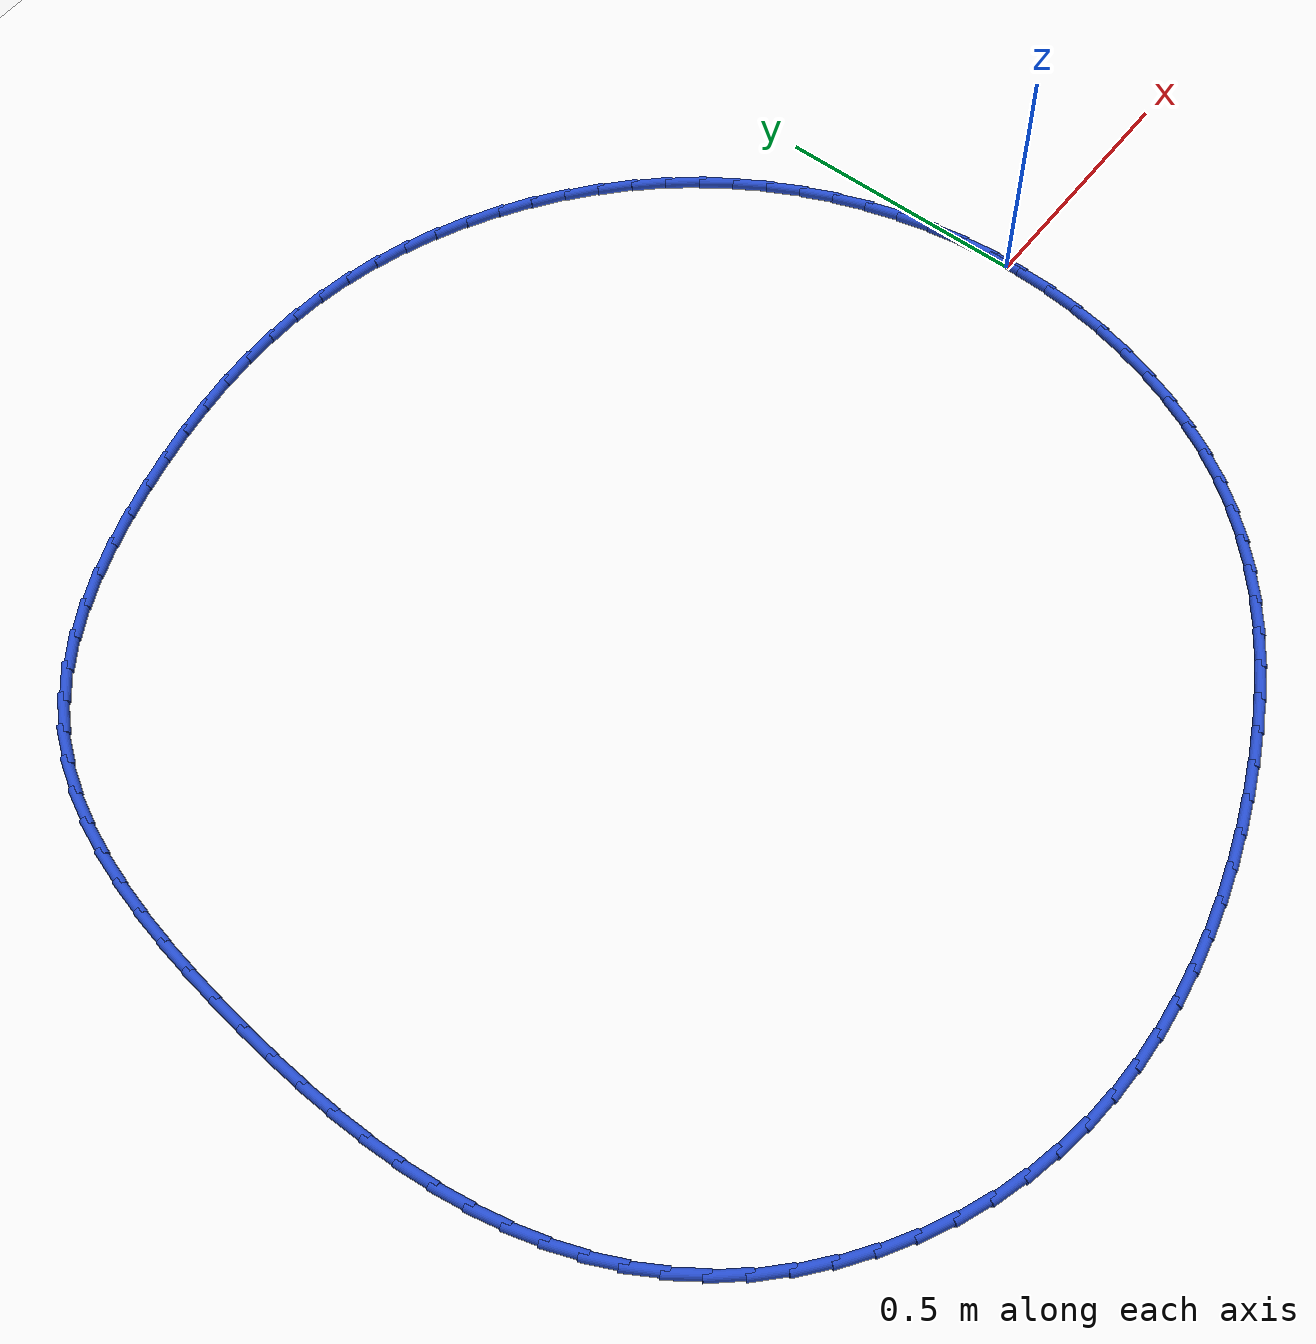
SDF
<sdf version="1.6">
 <world name="default">
  <light name="sun" type="directional">
   <pose>0 0 10 0 -0 0</pose>
   <diffuse>0.8 0.8 0.8 1</diffuse>
   <specular>0.2 0.2 0.2 1</specular>
   <attenuation>
    <range>1000</range>
    <constant>0.9</constant>
    <linear>0.01</linear>
    <quadratic>0.001</quadratic>
   </attenuation>
   <direction>-0.5 0.1 -0.9</direction>
  </light>
  <model name="ground_plane">
   <static>1</static>
   <link name="link">
    <collision name="collision">
     <geometry><plane><normal>0 0 1</normal><size>100 100</size></plane></geometry>
     <surface><friction><ode><mu>100</mu><mu2>50</mu2></ode></friction></surface>
    </collision>
    <visual name="visual">
     <cast_shadows>0</cast_shadows>
     <geometry><plane><normal>0 0 1</normal><size>100 100</size></plane></geometry>
     <material>
      <script><uri>file://media/materials/scripts/gazebo.material</uri><name>Gazebo/WhiteGlow</name></script>
     </material>
    </visual>
   </link>
  </model>
  <gravity>0 0 -9.8</gravity>
  <magnetic_field>6e-06 2.3e-05 -4.2e-05</magnetic_field>
  <atmosphere type="adiabatic"/>
  <physics name="default_physics" default="0" type="ode">
   <max_step_size>0.001</max_step_size>
   <real_time_factor>1</real_time_factor>
   <real_time_update_rate>1000</real_time_update_rate>
  </physics>
  <scene><ambient>0.4 0.4 0.4 1</ambient><background>0.7 0.7 0.7 1</background><shadows>1</shadows></scene>
  <spherical_coordinates>
   <surface_model>EARTH_WGS84</surface_model>
   <latitude_deg>0</latitude_deg>
   <longitude_deg>0</longitude_deg>
   <elevation>0</elevation>
   <heading_deg>0</heading_deg>
  </spherical_coordinates>
  <model name="line">
   <link name="link_0">
    <pose>2.7755575615628914e-17 -1.3877787807814457e-17 0.01 0 1.57 -1.5396666361829547</pose>
    <collision name="collision">
     <geometry><cylinder><radius>0.01</radius><length>0.08</length></cylinder></geometry>
    </collision>
    <visual name="visual">
     <material>
      <script><name>Gazebo/Blue</name><uri>file://media/materials/scripts/gazebo.material</uri></script>
     </material>
     <geometry><cylinder><radius>0.01</radius><length>0.08</length></cylinder></geometry>
    </visual>
   </link>
   <link name="link_1">
    <pose>-0.002068676911632316 0.0664320333873902 0.01 0 1.57 -1.4732998731462115</pose>
    <collision name="collision">
     <geometry><cylinder><radius>0.01</radius><length>0.08</length></cylinder></geometry>
    </collision>
    <visual name="visual">
     <material>
      <script><name>Gazebo/Blue</name><uri>file://media/materials/scripts/gazebo.material</uri></script>
     </material>
     <geometry><cylinder><radius>0.01</radius><length>0.08</length></cylinder></geometry>
    </visual>
   </link>
   <link name="link_2">
    <pose>-0.008526167065775412 0.13245511681312497 0.01 0 1.57 -1.4071627110914646</pose>
    <collision name="collision">
     <geometry><cylinder><radius>0.01</radius><length>0.08</length></cylinder></geometry>
    </collision>
    <visual name="visual">
     <material>
      <script><name>Gazebo/Blue</name><uri>file://media/materials/scripts/gazebo.material</uri></script>
     </material>
     <geometry><cylinder><radius>0.01</radius><length>0.08</length></cylinder></geometry>
    </visual>
   </link>
   <link name="link_3">
    <pose>-0.019316295532508392 0.19780630226422166 0.01 0 1.57 -1.3410327927561967</pose>
    <collision name="collision">
     <geometry><cylinder><radius>0.01</radius><length>0.08</length></cylinder></geometry>
    </collision>
    <visual name="visual">
     <material>
      <script><name>Gazebo/Blue</name><uri>file://media/materials/scripts/gazebo.material</uri></script>
     </material>
     <geometry><cylinder><radius>0.01</radius><length>0.08</length></cylinder></geometry>
    </visual>
   </link>
   <link name="link_4">
    <pose>-0.034382887381910476 0.262222641727698 0.01 0 1.57 -1.274683113809971</pose>
    <collision name="collision">
     <geometry><cylinder><radius>0.01</radius><length>0.08</length></cylinder></geometry>
    </collision>
    <visual name="visual">
     <material>
      <script><name>Gazebo/Blue</name><uri>file://media/materials/scripts/gazebo.material</uri></script>
     </material>
     <geometry><cylinder><radius>0.01</radius><length>0.08</length></cylinder></geometry>
    </visual>
   </link>
   <link name="link_5">
    <pose>-0.053669767684060773 0.32544118719057125 0.01 0 1.57 -1.207889470833252</pose>
    <collision name="collision">
     <geometry><cylinder><radius>0.01</radius><length>0.08</length></cylinder></geometry>
    </collision>
    <visual name="visual">
     <material>
      <script><name>Gazebo/Blue</name><uri>file://media/materials/scripts/gazebo.material</uri></script>
     </material>
     <geometry><cylinder><radius>0.01</radius><length>0.08</length></cylinder></geometry>
    </visual>
   </link>
   <link name="link_6">
    <pose>-0.07712076150903846 0.3871989906398591 0.01 0 1.57 -1.1404382048473993</pose>
    <collision name="collision">
     <geometry><cylinder><radius>0.01</radius><length>0.08</length></cylinder></geometry>
    </collision>
    <visual name="visual">
     <material>
      <script><name>Gazebo/Blue</name><uri>file://media/materials/scripts/gazebo.material</uri></script>
     </material>
     <geometry><cylinder><radius>0.01</radius><length>0.08</length></cylinder></geometry>
    </visual>
   </link>
   <link name="link_7">
    <pose>-0.10467969392692275 0.447233104062579 0.01 0 1.57 -1.0721344694362083</pose>
    <collision name="collision">
     <geometry><cylinder><radius>0.01</radius><length>0.08</length></cylinder></geometry>
    </collision>
    <visual name="visual">
     <material>
      <script><name>Gazebo/Blue</name><uri>file://media/materials/scripts/gazebo.material</uri></script>
     </material>
     <geometry><cylinder><radius>0.01</radius><length>0.08</length></cylinder></geometry>
    </visual>
   </link>
   <link name="link_8">
    <pose>-0.13629039000779275 0.5052805794457483 0.01 0 1.57 -1.0028111637615789</pose>
    <collision name="collision">
     <geometry><cylinder><radius>0.01</radius><length>0.08</length></cylinder></geometry>
    </collision>
    <visual name="visual">
     <material>
      <script><name>Gazebo/Blue</name><uri>file://media/materials/scripts/gazebo.material</uri></script>
     </material>
     <geometry><cylinder><radius>0.01</radius><length>0.08</length></cylinder></geometry>
    </visual>
   </link>
   <link name="link_9">
    <pose>-0.1718966748217276 0.5610784687763846 0.01 0 1.57 -0.9324235316983288</pose>
    <collision name="collision">
     <geometry><cylinder><radius>0.01</radius><length>0.08</length></cylinder></geometry>
    </collision>
    <visual name="visual">
     <material>
      <script><name>Gazebo/Blue</name><uri>file://media/materials/scripts/gazebo.material</uri></script>
     </material>
     <geometry><cylinder><radius>0.01</radius><length>0.08</length></cylinder></geometry>
    </visual>
   </link>
   <link name="link_10">
    <pose>-0.21143690778824817 0.6143659254807263 0.01 0 1.57 -0.862744038681525</pose>
    <collision name="collision">
     <geometry><cylinder><radius>0.01</radius><length>0.08</length></cylinder></geometry>
    </collision>
    <visual name="visual">
     <material>
      <script><name>Gazebo/Blue</name><uri>file://media/materials/scripts/gazebo.material</uri></script>
     </material>
     <geometry><cylinder><radius>0.01</radius><length>0.08</length></cylinder></geometry>
    </visual>
   </link>
   <link name="link_11">
    <pose>-0.25472664006701645 0.6649293204371971 0.01 0 1.57 -0.7953415461355577</pose>
    <collision name="collision">
     <geometry><cylinder><radius>0.01</radius><length>0.08</length></cylinder></geometry>
    </collision>
    <visual name="visual">
     <material>
      <script><name>Gazebo/Blue</name><uri>file://media/materials/scripts/gazebo.material</uri></script>
     </material>
     <geometry><cylinder><radius>0.01</radius><length>0.08</length></cylinder></geometry>
    </visual>
   </link>
   <link name="link_12">
    <pose>-0.301460205305848 0.7126016303638946 0.01 0 1.57 -0.729885296342831</pose>
    <collision name="collision">
     <geometry><cylinder><radius>0.01</radius><length>0.08</length></cylinder></geometry>
    </collision>
    <visual name="visual">
     <material>
      <script><name>Gazebo/Blue</name><uri>file://media/materials/scripts/gazebo.material</uri></script>
     </material>
     <geometry><cylinder><radius>0.01</radius><length>0.08</length></cylinder></geometry>
    </visual>
   </link>
   <link name="link_13">
    <pose>-0.3513267896685556 0.7572178110891175 0.01 0 1.57 -0.6659301898611303</pose>
    <collision name="collision">
     <geometry><cylinder><radius>0.01</radius><length>0.08</length></cylinder></geometry>
    </collision>
    <visual name="visual">
     <material>
      <script><name>Gazebo/Blue</name><uri>file://media/materials/scripts/gazebo.material</uri></script>
     </material>
     <geometry><cylinder><radius>0.01</radius><length>0.08</length></cylinder></geometry>
    </visual>
   </link>
   <link name="link_14">
    <pose>-0.4040155793189518 0.7986128184411636 0.01 0 1.57 -0.6030086593832586</pose>
    <collision name="collision">
     <geometry><cylinder><radius>0.01</radius><length>0.08</length></cylinder></geometry>
    </collision>
    <visual name="visual">
     <material>
      <script><name>Gazebo/Blue</name><uri>file://media/materials/scripts/gazebo.material</uri></script>
     </material>
     <geometry><cylinder><radius>0.01</radius><length>0.08</length></cylinder></geometry>
    </visual>
   </link>
   <link name="link_15">
    <pose>-0.45921576042084933 0.8366216082483318 0.01 0 1.57 -0.5406381720570681</pose>
    <collision name="collision">
     <geometry><cylinder><radius>0.01</radius><length>0.08</length></cylinder></geometry>
    </collision>
    <visual name="visual">
     <material>
      <script><name>Gazebo/Blue</name><uri>file://media/materials/scripts/gazebo.material</uri></script>
     </material>
     <geometry><cylinder><radius>0.01</radius><length>0.08</length></cylinder></geometry>
    </visual>
   </link>
   <link name="link_16">
    <pose>-0.516616519138061 0.8710791363389203 0.01 0 1.57 -0.4783256910679772</pose>
    <collision name="collision">
     <geometry><cylinder><radius>0.01</radius><length>0.08</length></cylinder></geometry>
    </collision>
    <visual name="visual">
     <material>
      <script><name>Gazebo/Blue</name><uri>file://media/materials/scripts/gazebo.material</uri></script>
     </material>
     <geometry><cylinder><radius>0.01</radius><length>0.08</length></cylinder></geometry>
    </visual>
   </link>
   <link name="link_17">
    <pose>-0.5759070416343992 0.9018203585412272 0.01 0 1.57 -0.4155703848669353</pose>
    <collision name="collision">
     <geometry><cylinder><radius>0.01</radius><length>0.08</length></cylinder></geometry>
    </collision>
    <visual name="visual">
     <material>
      <script><name>Gazebo/Blue</name><uri>file://media/materials/scripts/gazebo.material</uri></script>
     </material>
     <geometry><cylinder><radius>0.01</radius><length>0.08</length></cylinder></geometry>
    </visual>
   </link>
   <link name="link_18">
    <pose>-0.6367765140736767 0.9286802306835509 0.01 0 1.57 -0.35186588669432034</pose>
    <collision name="collision">
     <geometry><cylinder><radius>0.01</radius><length>0.08</length></cylinder></geometry>
    </collision>
    <visual name="visual">
     <material>
      <script><name>Gazebo/Blue</name><uri>file://media/materials/scripts/gazebo.material</uri></script>
     </material>
     <geometry><cylinder><radius>0.01</radius><length>0.08</length></cylinder></geometry>
    </visual>
   </link>
   <link name="link_19">
    <pose>-0.6989141226197068 0.9514937085941902 0.01 0 1.57 -0.2867034679441694</pose>
    <collision name="collision">
     <geometry><cylinder><radius>0.01</radius><length>0.08</length></cylinder></geometry>
    </collision>
    <visual name="visual">
     <material>
      <script><name>Gazebo/Blue</name><uri>file://media/materials/scripts/gazebo.material</uri></script>
     </material>
     <geometry><cylinder><radius>0.01</radius><length>0.08</length></cylinder></geometry>
    </visual>
   </link>
   <link name="link_20">
    <pose>-0.7620090534363011 0.9700957481014425 0.01 0 1.57 -0.21957839518341088</pose>
    <collision name="collision">
     <geometry><cylinder><radius>0.01</radius><length>0.08</length></cylinder></geometry>
    </collision>
    <visual name="visual">
     <material>
      <script><name>Gazebo/Blue</name><uri>file://media/materials/scripts/gazebo.material</uri></script>
     </material>
     <geometry><cylinder><radius>0.01</radius><length>0.08</length></cylinder></geometry>
    </visual>
   </link>
   <link name="link_21">
    <pose>-0.8257505317644688 0.98432136571862 0.01 0 1.57 -0.1512808712624088</pose>
    <collision name="collision">
     <geometry><cylinder><radius>0.01</radius><length>0.08</length></cylinder></geometry>
    </collision>
    <visual name="visual">
     <material>
      <script><name>Gazebo/Blue</name><uri>file://media/materials/scripts/gazebo.material</uri></script>
     </material>
     <geometry><cylinder><radius>0.01</radius><length>0.08</length></cylinder></geometry>
    </visual>
   </link>
   <link name="link_22">
    <pose>-0.8898878202840709 0.9940988132251783 0.01 0 1.57 -0.08571131233680594</pose>
    <collision name="collision">
     <geometry><cylinder><radius>0.01</radius><length>0.08</length></cylinder></geometry>
    </collision>
    <visual name="visual">
     <material>
      <script><name>Gazebo/Blue</name><uri>file://media/materials/scripts/gazebo.material</uri></script>
     </material>
     <geometry><cylinder><radius>0.01</radius><length>0.08</length></cylinder></geometry>
    </visual>
   </link>
   <link name="link_23">
    <pose>-0.9543513152349352 0.9996376341410964 0.01 0 1.57 -0.02412623185327196</pose>
    <collision name="collision">
     <geometry><cylinder><radius>0.01</radius><length>0.08</length></cylinder></geometry>
    </collision>
    <visual name="visual">
     <material>
      <script><name>Gazebo/Blue</name><uri>file://media/materials/scripts/gazebo.material</uri></script>
     </material>
     <geometry><cylinder><radius>0.01</radius><length>0.08</length></cylinder></geometry>
    </visual>
   </link>
   <link name="link_24">
    <pose>-1.0191054372854378 1.0012002102937785 0.01 0 1.57 0.03307997971531006</pose>
    <collision name="collision">
     <geometry><cylinder><radius>0.01</radius><length>0.08</length></cylinder></geometry>
    </collision>
    <visual name="visual">
     <material>
      <script><name>Gazebo/Blue</name><uri>file://media/materials/scripts/gazebo.material</uri></script>
     </material>
     <geometry><cylinder><radius>0.01</radius><length>0.08</length></cylinder></geometry>
    </visual>
   </link>
   <link name="link_25">
    <pose>-1.084114607103954 0.9990489235106266 0.01 0 1.57 0.08568398727525747</pose>
    <collision name="collision">
     <geometry><cylinder><radius>0.01</radius><length>0.08</length></cylinder></geometry>
    </collision>
    <visual name="visual">
     <material>
      <script><name>Gazebo/Blue</name><uri>file://media/materials/scripts/gazebo.material</uri></script>
     </material>
     <geometry><cylinder><radius>0.01</radius><length>0.08</length></cylinder></geometry>
    </visual>
   </link>
   <link name="link_26">
    <pose>-1.14934324535886 0.9934461556190449 0.01 0 1.57 0.13360577976679078</pose>
    <collision name="collision">
     <geometry><cylinder><radius>0.01</radius><length>0.08</length></cylinder></geometry>
    </collision>
    <visual name="visual">
     <material>
      <script><name>Gazebo/Blue</name><uri>file://media/materials/scripts/gazebo.material</uri></script>
     </material>
     <geometry><cylinder><radius>0.01</radius><length>0.08</length></cylinder></geometry>
    </visual>
   </link>
   <link name="link_27">
    <pose>-1.2147557727185307 0.9846542884464362 0.01 0 1.57 0.17687576969226165</pose>
    <collision name="collision">
     <geometry><cylinder><radius>0.01</radius><length>0.08</length></cylinder></geometry>
    </collision>
    <visual name="visual">
     <material>
      <script><name>Gazebo/Blue</name><uri>file://media/materials/scripts/gazebo.material</uri></script>
     </material>
     <geometry><cylinder><radius>0.01</radius><length>0.08</length></cylinder></geometry>
    </visual>
   </link>
   <link name="link_28">
    <pose>-1.2803166098513425 0.9729357038202046 0.01 0 1.57 0.21560221272392652</pose>
    <collision name="collision">
     <geometry><cylinder><radius>0.01</radius><length>0.08</length></cylinder></geometry>
    </collision>
    <visual name="visual">
     <material>
      <script><name>Gazebo/Blue</name><uri>file://media/materials/scripts/gazebo.material</uri></script>
     </material>
     <geometry><cylinder><radius>0.01</radius><length>0.08</length></cylinder></geometry>
    </visual>
   </link>
   <link name="link_29">
    <pose>-1.3459901774256702 0.9585527835677526 0.01 0 1.57 0.25154227002247675</pose>
    <collision name="collision">
     <geometry><cylinder><radius>0.01</radius><length>0.08</length></cylinder></geometry>
    </collision>
    <visual name="visual">
     <material>
      <script><name>Gazebo/Blue</name><uri>file://media/materials/scripts/gazebo.material</uri></script>
     </material>
     <geometry><cylinder><radius>0.01</radius><length>0.08</length></cylinder></geometry>
    </visual>
   </link>
   <link name="link_30">
    <pose>-1.4116397055581724 0.9416818136499769 0.01 0 1.57 0.2917548814380329</pose>
    <collision name="collision">
     <geometry><cylinder><radius>0.01</radius><length>0.08</length></cylinder></geometry>
    </collision>
    <visual name="visual">
     <material>
      <script><name>Gazebo/Blue</name><uri>file://media/materials/scripts/gazebo.material</uri></script>
     </material>
     <geometry><cylinder><radius>0.01</radius><length>0.08</length></cylinder></geometry>
    </visual>
   </link>
   <link name="link_31">
    <pose>-1.4767069671527253 0.9221404919648162 0.01 0 1.57 0.33878603515841765</pose>
    <collision name="collision">
     <geometry><cylinder><radius>0.01</radius><length>0.08</length></cylinder></geometry>
    </collision>
    <visual name="visual">
     <material>
      <script><name>Gazebo/Blue</name><uri>file://media/materials/scripts/gazebo.material</uri></script>
     </material>
     <geometry><cylinder><radius>0.01</radius><length>0.08</length></cylinder></geometry>
    </visual>
   </link>
   <link name="link_32">
    <pose>-1.540524026336454 0.8996531729899258 0.01 0 1.57 0.39365830364746035</pose>
    <collision name="collision">
     <geometry><cylinder><radius>0.01</radius><length>0.08</length></cylinder></geometry>
    </collision>
    <visual name="visual">
     <material>
      <script><name>Gazebo/Blue</name><uri>file://media/materials/scripts/gazebo.material</uri></script>
     </material>
     <geometry><cylinder><radius>0.01</radius><length>0.08</length></cylinder></geometry>
    </visual>
   </link>
   <link name="link_33">
    <pose>-1.602422946978823 0.8739442109837345 0.01 0 1.57 0.45755736041070355</pose>
    <collision name="collision">
     <geometry><cylinder><radius>0.01</radius><length>0.08</length></cylinder></geometry>
    </collision>
    <visual name="visual">
     <material>
      <script><name>Gazebo/Blue</name><uri>file://media/materials/scripts/gazebo.material</uri></script>
     </material>
     <geometry><cylinder><radius>0.01</radius><length>0.08</length></cylinder></geometry>
    </visual>
   </link>
   <link name="link_34">
    <pose>-1.6617357929492957 0.8447379602046715 0.01 0 1.57 0.5317691239062395</pose>
    <collision name="collision">
     <geometry><cylinder><radius>0.01</radius><length>0.08</length></cylinder></geometry>
    </collision>
    <visual name="visual">
     <material>
      <script><name>Gazebo/Blue</name><uri>file://media/materials/scripts/gazebo.material</uri></script>
     </material>
     <geometry><cylinder><radius>0.01</radius><length>0.08</length></cylinder></geometry>
    </visual>
   </link>
   <link name="link_35">
    <pose>-1.7177946281173362 0.8117587749111652 0.01 0 1.57 0.6175407299610177</pose>
    <collision name="collision">
     <geometry><cylinder><radius>0.01</radius><length>0.08</length></cylinder></geometry>
    </collision>
    <visual name="visual">
     <material>
      <script><name>Gazebo/Blue</name><uri>file://media/materials/scripts/gazebo.material</uri></script>
     </material>
     <geometry><cylinder><radius>0.01</radius><length>0.08</length></cylinder></geometry>
    </visual>
   </link>
   <link name="link_36">
    <pose>-1.769931516352407 0.7747310093616446 0.01 0 1.57 0.7158246583210682</pose>
    <collision name="collision">
     <geometry><cylinder><radius>0.01</radius><length>0.08</length></cylinder></geometry>
    </collision>
    <visual name="visual">
     <material>
      <script><name>Gazebo/Blue</name><uri>file://media/materials/scripts/gazebo.material</uri></script>
     </material>
     <geometry><cylinder><radius>0.01</radius><length>0.08</length></cylinder></geometry>
    </visual>
   </link>
   <link name="link_37">
    <pose>-1.8174785215239735 0.7333790178145384 0.01 0 1.57 0.8256910286679854</pose>
    <collision name="collision">
     <geometry><cylinder><radius>0.01</radius><length>0.08</length></cylinder></geometry>
    </collision>
    <visual name="visual">
     <material>
      <script><name>Gazebo/Blue</name><uri>file://media/materials/scripts/gazebo.material</uri></script>
     </material>
     <geometry><cylinder><radius>0.01</radius><length>0.08</length></cylinder></geometry>
    </visual>
   </link>
   <link name="link_38">
    <pose>-1.8598300825491287 0.6874692282610181 0.01 0 1.57 0.9339381533999899</pose>
    <collision name="collision">
     <geometry><cylinder><radius>0.01</radius><length>0.08</length></cylinder></geometry>
    </collision>
    <visual name="visual">
     <material>
      <script><name>Gazebo/Blue</name><uri>file://media/materials/scripts/gazebo.material</uri></script>
     </material>
     <geometry><cylinder><radius>0.01</radius><length>0.08</length></cylinder></geometry>
    </visual>
   </link>
   <link name="link_39">
    <pose>-1.897015530161807 0.6371963211688044 0.01 0 1.57 1.031676700301668</pose>
    <collision name="collision">
     <geometry><cylinder><radius>0.01</radius><length>0.08</length></cylinder></geometry>
    </collision>
    <visual name="visual">
     <material>
      <script><name>Gazebo/Blue</name><uri>file://media/materials/scripts/gazebo.material</uri></script>
     </material>
     <geometry><cylinder><radius>0.01</radius><length>0.08</length></cylinder></geometry>
    </visual>
   </link>
   <link name="link_40">
    <pose>-1.929434671859859 0.5830048740549139 0.01 0 1.57 1.1179427794209147</pose>
    <collision name="collision">
     <geometry><cylinder><radius>0.01</radius><length>0.08</length></cylinder></geometry>
    </collision>
    <visual name="visual">
     <material>
      <script><name>Gazebo/Blue</name><uri>file://media/materials/scripts/gazebo.material</uri></script>
     </material>
     <geometry><cylinder><radius>0.01</radius><length>0.08</length></cylinder></geometry>
    </visual>
   </link>
   <link name="link_41">
    <pose>-1.9574919479096 0.5253425893696447 0.01 0 1.57 1.1927686699849267</pose>
    <collision name="collision">
     <geometry><cylinder><radius>0.01</radius><length>0.08</length></cylinder></geometry>
    </collision>
    <visual name="visual">
     <material>
      <script><name>Gazebo/Blue</name><uri>file://media/materials/scripts/gazebo.material</uri></script>
     </material>
     <geometry><cylinder><radius>0.01</radius><length>0.08</length></cylinder></geometry>
    </visual>
   </link>
   <link name="link_42">
    <pose>-1.9815917985773472 0.46465716956329584 0.01 0 1.57 1.2567490397251746</pose>
    <collision name="collision">
     <geometry><cylinder><radius>0.01</radius><length>0.08</length></cylinder></geometry>
    </collision>
    <visual name="visual">
     <material>
      <script><name>Gazebo/Blue</name><uri>file://media/materials/scripts/gazebo.material</uri></script>
     </material>
     <geometry><cylinder><radius>0.01</radius><length>0.08</length></cylinder></geometry>
    </visual>
   </link>
   <link name="link_43">
    <pose>-2.0021386641294168 0.40139631708616497 0.01 0 1.57 1.3107456372950315</pose>
    <collision name="collision">
     <geometry><cylinder><radius>0.01</radius><length>0.08</length></cylinder></geometry>
    </collision>
    <visual name="visual">
     <material>
      <script><name>Gazebo/Blue</name><uri>file://media/materials/scripts/gazebo.material</uri></script>
     </material>
     <geometry><cylinder><radius>0.01</radius><length>0.08</length></cylinder></geometry>
    </visual>
   </link>
   <link name="link_44">
    <pose>-2.0195369848321247 0.336007734388551 0.01 0 1.57 1.3556811402090074</pose>
    <collision name="collision">
     <geometry><cylinder><radius>0.01</radius><length>0.08</length></cylinder></geometry>
    </collision>
    <visual name="visual">
     <material>
      <script><name>Gazebo/Blue</name><uri>file://media/materials/scripts/gazebo.material</uri></script>
     </material>
     <geometry><cylinder><radius>0.01</radius><length>0.08</length></cylinder></geometry>
    </visual>
   </link>
   <link name="link_45">
    <pose>-2.0341912009517875 0.2689391239207522 0.01 0 1.57 1.392414334858567</pose>
    <collision name="collision">
     <geometry><cylinder><radius>0.01</radius><length>0.08</length></cylinder></geometry>
    </collision>
    <visual name="visual">
     <material>
      <script><name>Gazebo/Blue</name><uri>file://media/materials/scripts/gazebo.material</uri></script>
     </material>
     <geometry><cylinder><radius>0.01</radius><length>0.08</length></cylinder></geometry>
    </visual>
   </link>
   <link name="link_46">
    <pose>-2.0465057527547206 0.20063818813306708 0.01 0 1.57 1.4216728941943646</pose>
    <collision name="collision">
     <geometry><cylinder><radius>0.01</radius><length>0.08</length></cylinder></geometry>
    </collision>
    <visual name="visual">
     <material>
      <script><name>Gazebo/Blue</name><uri>file://media/materials/scripts/gazebo.material</uri></script>
     </material>
     <geometry><cylinder><radius>0.01</radius><length>0.08</length></cylinder></geometry>
    </visual>
   </link>
   <link name="link_47">
    <pose>-2.056885080507242 0.13155262947579405 0.01 0 1.57 1.4446354104676953</pose>
    <collision name="collision">
     <geometry><cylinder><radius>0.01</radius><length>0.08</length></cylinder></geometry>
    </collision>
    <visual name="visual">
     <material>
      <script><name>Gazebo/Blue</name><uri>file://media/materials/scripts/gazebo.material</uri></script>
     </material>
     <geometry><cylinder><radius>0.01</radius><length>0.08</length></cylinder></geometry>
    </visual>
   </link>
   <link name="link_48">
    <pose>-2.065691838095973 0.06211762764616226 0.01 0 1.57 1.4680350586954916</pose>
    <collision name="collision">
     <geometry><cylinder><radius>0.01</radius><length>0.08</length></cylinder></geometry>
    </collision>
    <visual name="visual">
     <material>
      <script><name>Gazebo/Blue</name><uri>file://media/materials/scripts/gazebo.material</uri></script>
     </material>
     <geometry><cylinder><radius>0.01</radius><length>0.08</length></cylinder></geometry>
    </visual>
   </link>
   <link name="link_49">
    <pose>-2.0728567949897823 -0.007361066959678485 0.01 0 1.57 1.495908772334002</pose>
    <collision name="collision">
     <geometry><cylinder><radius>0.01</radius><length>0.08</length></cylinder></geometry>
    </collision>
    <visual name="visual">
     <material>
      <script><name>Gazebo/Blue</name><uri>file://media/materials/scripts/gazebo.material</uri></script>
     </material>
     <geometry><cylinder><radius>0.01</radius><length>0.08</length></cylinder></geometry>
    </visual>
   </link>
   <link name="link_50">
    <pose>-2.0780557052748563 -0.07665412824195683 0.01 0 1.57 1.5286414190965583</pose>
    <collision name="collision">
     <geometry><cylinder><radius>0.01</radius><length>0.08</length></cylinder></geometry>
    </collision>
    <visual name="visual">
     <material>
      <script><name>Gazebo/Blue</name><uri>file://media/materials/scripts/gazebo.material</uri></script>
     </material>
     <geometry><cylinder><radius>0.01</radius><length>0.08</length></cylinder></geometry>
    </visual>
   </link>
   <link name="link_51">
    <pose>-2.0809610182044618 -0.14553322050990408 0.01 0 1.57 1.5666319574731642</pose>
    <collision name="collision">
     <geometry><cylinder><radius>0.01</radius><length>0.08</length></cylinder></geometry>
    </collision>
    <visual name="visual">
     <material>
      <script><name>Gazebo/Blue</name><uri>file://media/materials/scripts/gazebo.material</uri></script>
     </material>
     <geometry><cylinder><radius>0.01</radius><length>0.08</length></cylinder></geometry>
    </visual>
   </link>
   <link name="link_52">
    <pose>-2.0812451830318635 -0.21377000807275182 0.01 0 1.57 -1.531263921655442</pose>
    <collision name="collision">
     <geometry><cylinder><radius>0.01</radius><length>0.08</length></cylinder></geometry>
    </collision>
    <visual name="visual">
     <material>
      <script><name>Gazebo/Blue</name><uri>file://media/materials/scripts/gazebo.material</uri></script>
     </material>
     <geometry><cylinder><radius>0.01</radius><length>0.08</length></cylinder></geometry>
    </visual>
   </link>
   <link name="link_53">
    <pose>-2.0785806490103256 -0.2811361552397311 0.01 0 1.57 -1.4813863732306323</pose>
    <collision name="collision">
     <geometry><cylinder><radius>0.01</radius><length>0.08</length></cylinder></geometry>
    </collision>
    <visual name="visual">
     <material>
      <script><name>Gazebo/Blue</name><uri>file://media/materials/scripts/gazebo.material</uri></script>
     </material>
     <geometry><cylinder><radius>0.01</radius><length>0.08</length></cylinder></geometry>
    </visual>
   </link>
   <link name="link_54">
    <pose>-2.072639865393116 -0.3474033263200738 0.01 0 1.57 -1.4248653935794735</pose>
    <collision name="collision">
     <geometry><cylinder><radius>0.01</radius><length>0.08</length></cylinder></geometry>
    </collision>
    <visual name="visual">
     <material>
      <script><name>Gazebo/Blue</name><uri>file://media/materials/scripts/gazebo.material</uri></script>
     </material>
     <geometry><cylinder><radius>0.01</radius><length>0.08</length></cylinder></geometry>
    </visual>
   </link>
   <link name="link_55">
    <pose>-2.0630952814334966 -0.4123431856230107 0.01 0 1.57 -1.361308439435145</pose>
    <collision name="collision">
     <geometry><cylinder><radius>0.01</radius><length>0.08</length></cylinder></geometry>
    </collision>
    <visual name="visual">
     <material>
      <script><name>Gazebo/Blue</name><uri>file://media/materials/scripts/gazebo.material</uri></script>
     </material>
     <geometry><cylinder><radius>0.01</radius><length>0.08</length></cylinder></geometry>
    </visual>
   </link>
   <link name="link_56">
    <pose>-2.049619346384736 -0.4757273974577737 0.01 0 1.57 -1.2904751172739095</pose>
    <collision name="collision">
     <geometry><cylinder><radius>0.01</radius><length>0.08</length></cylinder></geometry>
    </collision>
    <visual name="visual">
     <material>
      <script><name>Gazebo/Blue</name><uri>file://media/materials/scripts/gazebo.material</uri></script>
     </material>
     <geometry><cylinder><radius>0.01</radius><length>0.08</length></cylinder></geometry>
    </visual>
   </link>
   <link name="link_57">
    <pose>-2.031884509500097 -0.5373276261335937 0.01 0 1.57 -1.2123814141477622</pose>
    <collision name="collision">
     <geometry><cylinder><radius>0.01</radius><length>0.08</length></cylinder></geometry>
    </collision>
    <visual name="visual">
     <material>
      <script><name>Gazebo/Blue</name><uri>file://media/materials/scripts/gazebo.material</uri></script>
     </material>
     <geometry><cylinder><radius>0.01</radius><length>0.08</length></cylinder></geometry>
    </visual>
   </link>
   <link name="link_58">
    <pose>-2.0095632200328466 -0.596915535959702 0.01 0 1.57 -1.127414199793903</pose>
    <collision name="collision">
     <geometry><cylinder><radius>0.01</radius><length>0.08</length></cylinder></geometry>
    </collision>
    <visual name="visual">
     <material>
      <script><name>Gazebo/Blue</name><uri>file://media/materials/scripts/gazebo.material</uri></script>
     </material>
     <geometry><cylinder><radius>0.01</radius><length>0.08</length></cylinder></geometry>
    </visual>
   </link>
   <link name="link_59">
    <pose>-1.9823279272362488 -0.6542627912453308 0.01 0 1.57 -1.0364295456426176</pose>
    <collision name="collision">
     <geometry><cylinder><radius>0.01</radius><length>0.08</length></cylinder></geometry>
    </collision>
    <visual name="visual">
     <material>
      <script><name>Gazebo/Blue</name><uri>file://media/materials/scripts/gazebo.material</uri></script>
     </material>
     <geometry><cylinder><radius>0.01</radius><length>0.08</length></cylinder></geometry>
    </visual>
   </link>
   <link name="link_60">
    <pose>-1.9498510803635702 -0.7091410562997111 0.01 0 1.57 -0.9421463231082723</pose>
    <collision name="collision">
     <geometry><cylinder><radius>0.01</radius><length>0.08</length></cylinder></geometry>
    </collision>
    <visual name="visual">
     <material>
      <script><name>Gazebo/Blue</name><uri>file://media/materials/scripts/gazebo.material</uri></script>
     </material>
     <geometry><cylinder><radius>0.01</radius><length>0.08</length></cylinder></geometry>
    </visual>
   </link>
   <link name="link_61">
    <pose>-1.911922499646212 -0.7613088960566693 0.01 0 1.57 -0.8520274622241071</pose>
    <collision name="collision">
     <geometry><cylinder><radius>0.01</radius><length>0.08</length></cylinder></geometry>
    </collision>
    <visual name="visual">
     <material>
      <script><name>Gazebo/Blue</name><uri>file://media/materials/scripts/gazebo.material</uri></script>
     </material>
     <geometry><cylinder><radius>0.01</radius><length>0.08</length></cylinder></geometry>
    </visual>
   </link>
   <link name="link_62">
    <pose>-1.8689213784298186 -0.8104590975226468 0.01 0 1.57 -0.7671273528700453</pose>
    <collision name="collision">
     <geometry><cylinder><radius>0.01</radius><length>0.08</length></cylinder></geometry>
    </collision>
    <visual name="visual">
     <material>
      <script><name>Gazebo/Blue</name><uri>file://media/materials/scripts/gazebo.material</uri></script>
     </material>
     <geometry><cylinder><radius>0.01</radius><length>0.08</length></cylinder></geometry>
    </visual>
   </link>
   <link name="link_63">
    <pose>-1.821411507016268 -0.8562638454660638 0.01 0 1.57 -0.6861032865790153</pose>
    <collision name="collision">
     <geometry><cylinder><radius>0.01</radius><length>0.08</length></cylinder></geometry>
    </collision>
    <visual name="visual">
     <material>
      <script><name>Gazebo/Blue</name><uri>file://media/materials/scripts/gazebo.material</uri></script>
     </material>
     <geometry><cylinder><radius>0.01</radius><length>0.08</length></cylinder></geometry>
    </visual>
   </link>
   <link name="link_64">
    <pose>-1.7699567397976548 -0.8983953175024508 0.01 0 1.57 -0.6076019533352139</pose>
    <collision name="collision">
     <geometry><cylinder><radius>0.01</radius><length>0.08</length></cylinder></geometry>
    </collision>
    <visual name="visual">
     <material>
      <script><name>Gazebo/Blue</name><uri>file://media/materials/scripts/gazebo.material</uri></script>
     </material>
     <geometry><cylinder><radius>0.01</radius><length>0.08</length></cylinder></geometry>
    </visual>
   </link>
   <link name="link_65">
    <pose>-1.7151209311660716 -0.9365256912473365 0.01 0 1.57 -0.5302786301263033</pose>
    <collision name="collision">
     <geometry><cylinder><radius>0.01</radius><length>0.08</length></cylinder></geometry>
    </collision>
    <visual name="visual">
     <material>
      <script><name>Gazebo/Blue</name><uri>file://media/materials/scripts/gazebo.material</uri></script>
     </material>
     <geometry><cylinder><radius>0.01</radius><length>0.08</length></cylinder></geometry>
    </visual>
   </link>
   <link name="link_66">
    <pose>-1.6574679355136128 -0.9703271443162516 0.01 0 1.57 -0.45279319608678664</pose>
    <collision name="collision">
     <geometry><cylinder><radius>0.01</radius><length>0.08</length></cylinder></geometry>
    </collision>
    <visual name="visual">
     <material>
      <script><name>Gazebo/Blue</name><uri>file://media/materials/scripts/gazebo.material</uri></script>
     </material>
     <geometry><cylinder><radius>0.01</radius><length>0.08</length></cylinder></geometry>
    </visual>
   </link>
   <link name="link_67">
    <pose>-1.597561607232371 -0.999471854324725 0.01 0 1.57 -0.3738117240538094</pose>
    <collision name="collision">
     <geometry><cylinder><radius>0.01</radius><length>0.08</length></cylinder></geometry>
    </collision>
    <visual name="visual">
     <material>
      <script><name>Gazebo/Blue</name><uri>file://media/materials/scripts/gazebo.material</uri></script>
     </material>
     <geometry><cylinder><radius>0.01</radius><length>0.08</length></cylinder></geometry>
    </visual>
   </link>
   <link name="link_68">
    <pose>-1.5359647799631782 -1.0236335071637856 0.01 0 1.57 -0.29402274917453425</pose>
    <collision name="collision">
     <geometry><cylinder><radius>0.01</radius><length>0.08</length></cylinder></geometry>
    </collision>
    <visual name="visual">
     <material>
      <script><name>Gazebo/Blue</name><uri>file://media/materials/scripts/gazebo.material</uri></script>
     </material>
     <geometry><cylinder><radius>0.01</radius><length>0.08</length></cylinder></geometry>
    </visual>
   </link>
   <link name="link_69">
    <pose>-1.473120578786775 -1.042662671668142 0.01 0 1.57 -0.21706440475081712</pose>
    <collision name="collision">
     <geometry><cylinder><radius>0.01</radius><length>0.08</length></cylinder></geometry>
    </collision>
    <visual name="visual">
     <material>
      <script><name>Gazebo/Blue</name><uri>file://media/materials/scripts/gazebo.material</uri></script>
     </material>
     <geometry><cylinder><radius>0.01</radius><length>0.08</length></cylinder></geometry>
    </visual>
   </link>
   <link name="link_70">
    <pose>-1.4092416544961415 -1.0567504685130031 0.01 0 1.57 -0.14385752286132833</pose>
    <collision name="collision">
     <geometry><cylinder><radius>0.01</radius><length>0.08</length></cylinder></geometry>
    </collision>
    <visual name="visual">
     <material>
      <script><name>Gazebo/Blue</name><uri>file://media/materials/scripts/gazebo.material</uri></script>
     </material>
     <geometry><cylinder><radius>0.01</radius><length>0.08</length></cylinder></geometry>
    </visual>
   </link>
   <link name="link_71">
    <pose>-1.3445144572770815 -1.0661267327355253 0.01 0 1.57 -0.07471370373480449</pose>
    <collision name="collision">
     <geometry><cylinder><radius>0.01</radius><length>0.08</length></cylinder></geometry>
    </collision>
    <visual name="visual">
     <material>
      <script><name>Gazebo/Blue</name><uri>file://media/materials/scripts/gazebo.material</uri></script>
     </material>
     <geometry><cylinder><radius>0.01</radius><length>0.08</length></cylinder></geometry>
    </visual>
   </link>
   <link name="link_72">
    <pose>-1.2791254373153975 -1.0710212993728645 0.01 0 1.57 -0.009757680391872645</pose>
    <collision name="collision">
     <geometry><cylinder><radius>0.01</radius><length>0.08</length></cylinder></geometry>
    </collision>
    <visual name="visual">
     <material>
      <script><name>Gazebo/Blue</name><uri>file://media/materials/scripts/gazebo.material</uri></script>
     </material>
     <geometry><cylinder><radius>0.01</radius><length>0.08</length></cylinder></geometry>
    </visual>
   </link>
   <link name="link_73">
    <pose>-1.2132610447968941 -1.0716640034621783 0.01 0 1.57 0.05103884181110557</pose>
    <collision name="collision">
     <geometry><cylinder><radius>0.01</radius><length>0.08</length></cylinder></geometry>
    </collision>
    <visual name="visual">
     <material>
      <script><name>Gazebo/Blue</name><uri>file://media/materials/scripts/gazebo.material</uri></script>
     </material>
     <geometry><cylinder><radius>0.01</radius><length>0.08</length></cylinder></geometry>
    </visual>
   </link>
   <link name="link_74">
    <pose>-1.1471077299073746 -1.0682846800406225 0.01 0 1.57 0.10782008061854187</pose>
    <collision name="collision">
     <geometry><cylinder><radius>0.01</radius><length>0.08</length></cylinder></geometry>
    </collision>
    <visual name="visual">
     <material>
      <script><name>Gazebo/Blue</name><uri>file://media/materials/scripts/gazebo.material</uri></script>
     </material>
     <geometry><cylinder><radius>0.01</radius><length>0.08</length></cylinder></geometry>
    </visual>
   </link>
   <link name="link_75">
    <pose>-1.0808519428326424 -1.0611131641453537 0.01 0 1.57 0.16081147541309856</pose>
    <collision name="collision">
     <geometry><cylinder><radius>0.01</radius><length>0.08</length></cylinder></geometry>
    </collision>
    <visual name="visual">
     <material>
      <script><name>Gazebo/Blue</name><uri>file://media/materials/scripts/gazebo.material</uri></script>
     </material>
     <geometry><cylinder><radius>0.01</radius><length>0.08</length></cylinder></geometry>
    </visual>
   </link>
   <link name="link_76">
    <pose>-1.0146801337585007 -1.0503792908135279 0.01 0 1.57 0.2102904855950222</pose>
    <collision name="collision">
     <geometry><cylinder><radius>0.01</radius><length>0.08</length></cylinder></geometry>
    </collision>
    <visual name="visual">
     <material>
      <script><name>Gazebo/Blue</name><uri>file://media/materials/scripts/gazebo.material</uri></script>
     </material>
     <geometry><cylinder><radius>0.01</radius><length>0.08</length></cylinder></geometry>
    </visual>
   </link>
   <link name="link_77">
    <pose>-0.9487787528707539 -1.0363128950823028 0.01 0 1.57 0.25656396136150955</pose>
    <collision name="collision">
     <geometry><cylinder><radius>0.01</radius><length>0.08</length></cylinder></geometry>
    </collision>
    <visual name="visual">
     <material>
      <script><name>Gazebo/Blue</name><uri>file://media/materials/scripts/gazebo.material</uri></script>
     </material>
     <geometry><cylinder><radius>0.01</radius><length>0.08</length></cylinder></geometry>
    </visual>
   </link>
   <link name="link_78">
    <pose>-0.8833342503552046 -1.019143811988834 0.01 0 1.57 0.299951878002094</pose>
    <collision name="collision">
     <geometry><cylinder><radius>0.01</radius><length>0.08</length></cylinder></geometry>
    </collision>
    <visual name="visual">
     <material>
      <script><name>Gazebo/Blue</name><uri>file://media/materials/scripts/gazebo.material</uri></script>
     </material>
     <geometry><cylinder><radius>0.01</radius><length>0.08</length></cylinder></geometry>
    </visual>
   </link>
   <link name="link_79">
    <pose>-0.8185330763976573 -0.9991018765702784 0.01 0 1.57 0.34077658684550005</pose>
    <collision name="collision">
     <geometry><cylinder><radius>0.01</radius><length>0.08</length></cylinder></geometry>
    </collision>
    <visual name="visual">
     <material>
      <script><name>Gazebo/Blue</name><uri>file://media/materials/scripts/gazebo.material</uri></script>
     </material>
     <geometry><cylinder><radius>0.01</radius><length>0.08</length></cylinder></geometry>
    </visual>
   </link>
   <link name="link_80">
    <pose>-0.754561681183915 -0.9764169238637923 0.01 0 1.57 0.37935654238393846</pose>
    <collision name="collision">
     <geometry><cylinder><radius>0.01</radius><length>0.08</length></cylinder></geometry>
    </collision>
    <visual name="visual">
     <material>
      <script><name>Gazebo/Blue</name><uri>file://media/materials/scripts/gazebo.material</uri></script>
     </material>
     <geometry><cylinder><radius>0.01</radius><length>0.08</length></cylinder></geometry>
    </visual>
   </link>
   <link name="link_81">
    <pose>-0.6916065148997813 -0.9513187889065324 0.01 0 1.57 0.4168251978555789</pose>
    <collision name="collision">
     <geometry><cylinder><radius>0.01</radius><length>0.08</length></cylinder></geometry>
    </collision>
    <visual name="visual">
     <material>
      <script><name>Gazebo/Blue</name><uri>file://media/materials/scripts/gazebo.material</uri></script>
     </material>
     <geometry><cylinder><radius>0.01</radius><length>0.08</length></cylinder></geometry>
    </visual>
   </link>
   <link name="link_82">
    <pose>-0.6298668724718597 -0.9239823285911709 0.01 0 1.57 0.45686335882679596</pose>
    <collision name="collision">
     <geometry><cylinder><radius>0.01</radius><length>0.08</length></cylinder></geometry>
    </collision>
    <visual name="visual">
     <material>
      <script><name>Gazebo/Blue</name><uri>file://media/materials/scripts/gazebo.material</uri></script>
     </material>
     <geometry><cylinder><radius>0.01</radius><length>0.08</length></cylinder></geometry>
    </visual>
   </link>
   <link name="link_83">
    <pose>-0.5695949918927339 -0.8943557925493758 0.01 0 1.57 0.5006201239884803</pose>
    <collision name="collision">
     <geometry><cylinder><radius>0.01</radius><length>0.08</length></cylinder></geometry>
    </collision>
    <visual name="visual">
     <material>
      <script><name>Gazebo/Blue</name><uri>file://media/materials/scripts/gazebo.material</uri></script>
     </material>
     <geometry><cylinder><radius>0.01</radius><length>0.08</length></cylinder></geometry>
    </visual>
   </link>
   <link name="link_84">
    <pose>-0.5110567497777578 -0.8623290542894759 0.01 0 1.57 0.5483642351094031</pose>
    <collision name="collision">
     <geometry><cylinder><radius>0.01</radius><length>0.08</length></cylinder></geometry>
    </collision>
    <visual name="visual">
     <material>
      <script><name>Gazebo/Blue</name><uri>file://media/materials/scripts/gazebo.material</uri></script>
     </material>
     <geometry><cylinder><radius>0.01</radius><length>0.08</length></cylinder></geometry>
    </visual>
   </link>
   <link name="link_85">
    <pose>-0.45451802275550346 -0.8277919872632151 0.01 0 1.57 0.6003405010805727</pose>
    <collision name="collision">
     <geometry><cylinder><radius>0.01</radius><length>0.08</length></cylinder></geometry>
    </collision>
    <visual name="visual">
     <material>
      <script><name>Gazebo/Blue</name><uri>file://media/materials/scripts/gazebo.material</uri></script>
     </material>
     <geometry><cylinder><radius>0.01</radius><length>0.08</length></cylinder></geometry>
    </visual>
   </link>
   <link name="link_86">
    <pose>-0.4002446874545448 -0.7906344649223387 0.01 0 1.57 0.6567452346668414</pose>
    <collision name="collision">
     <geometry><cylinder><radius>0.01</radius><length>0.08</length></cylinder></geometry>
    </collision>
    <visual name="visual">
     <material>
      <script><name>Gazebo/Blue</name><uri>file://media/materials/scripts/gazebo.material</uri></script>
     </material>
     <geometry><cylinder><radius>0.01</radius><length>0.08</length></cylinder></geometry>
    </visual>
   </link>
   <link name="link_87">
    <pose>-0.3485026205034548 -0.750746360718591 0.01 0 1.57 0.7176949239765211</pose>
    <collision name="collision">
     <geometry><cylinder><radius>0.01</radius><length>0.08</length></cylinder></geometry>
    </collision>
    <visual name="visual">
     <material>
      <script><name>Gazebo/Blue</name><uri>file://media/materials/scripts/gazebo.material</uri></script>
     </material>
     <geometry><cylinder><radius>0.01</radius><length>0.08</length></cylinder></geometry>
    </visual>
   </link>
   <link name="link_88">
    <pose>-0.2995576985308071 -0.7080175481037174 0.01 0 1.57 0.783189239815732</pose>
    <collision name="collision">
     <geometry><cylinder><radius>0.01</radius><length>0.08</length></cylinder></geometry>
    </collision>
    <visual name="visual">
     <material>
      <script><name>Gazebo/Blue</name><uri>file://media/materials/scripts/gazebo.material</uri></script>
     </material>
     <geometry><cylinder><radius>0.01</radius><length>0.08</length></cylinder></geometry>
    </visual>
   </link>
   <link name="link_89">
    <pose>-0.2536757981651746 -0.6623379005294615 0.01 0 1.57 0.8530716641446452</pose>
    <collision name="collision">
     <geometry><cylinder><radius>0.01</radius><length>0.08</length></cylinder></geometry>
    </collision>
    <visual name="visual">
     <material>
      <script><name>Gazebo/Blue</name><uri>file://media/materials/scripts/gazebo.material</uri></script>
     </material>
     <geometry><cylinder><radius>0.01</radius><length>0.08</length></cylinder></geometry>
    </visual>
   </link>
   <link name="link_90">
    <pose>-0.21112279603513068 -0.6135972914475685 0.01 0 1.57 0.9268593435081194</pose>
    <collision name="collision">
     <geometry><cylinder><radius>0.01</radius><length>0.08</length></cylinder></geometry>
    </collision>
    <visual name="visual">
     <material>
      <script><name>Gazebo/Blue</name><uri>file://media/materials/scripts/gazebo.material</uri></script>
     </material>
     <geometry><cylinder><radius>0.01</radius><length>0.08</length></cylinder></geometry>
    </visual>
   </link>
   <link name="link_91">
    <pose>-0.17216071836428287 -0.5616950009780534 0.01 0 1.57 1.0010162823837243</pose>
    <collision name="collision">
     <geometry><cylinder><radius>0.01</radius><length>0.08</length></cylinder></geometry>
    </collision>
    <visual name="visual">
     <material>
      <script><name>Gazebo/Blue</name><uri>file://media/materials/scripts/gazebo.material</uri></script>
     </material>
     <geometry><cylinder><radius>0.01</radius><length>0.08</length></cylinder></geometry>
    </visual>
   </link>
   <link name="link_92">
    <pose>-0.13696091863023555 -0.5067518257957824 0.01 0 1.57 1.0725378121267086</pose>
    <collision name="collision">
     <geometry><cylinder><radius>0.01</radius><length>0.08</length></cylinder></geometry>
    </collision>
    <visual name="visual">
     <material>
      <script><name>Gazebo/Blue</name><uri>file://media/materials/scripts/gazebo.material</uri></script>
     </material>
     <geometry><cylinder><radius>0.01</radius><length>0.08</length></cylinder></geometry>
    </visual>
   </link>
   <link name="link_93">
    <pose>-0.10560288765821217 -0.44911298611160255 0.01 0 1.57 1.1417183546621765</pose>
    <collision name="collision">
     <geometry><cylinder><radius>0.01</radius><length>0.08</length></cylinder></geometry>
    </collision>
    <visual name="visual">
     <material>
      <script><name>Gazebo/Blue</name><uri>file://media/materials/scripts/gazebo.material</uri></script>
     </material>
     <geometry><cylinder><radius>0.01</radius><length>0.08</length></cylinder></geometry>
    </visual>
   </link>
   <link name="link_94">
    <pose>-0.07816202787451376 -0.38913369023183614 0.01 0 1.57 1.2090354268907766</pose>
    <collision name="collision">
     <geometry><cylinder><radius>0.01</radius><length>0.08</length></cylinder></geometry>
    </collision>
    <visual name="visual">
     <material>
      <script><name>Gazebo/Blue</name><uri>file://media/materials/scripts/gazebo.material</uri></script>
     </material>
     <geometry><cylinder><radius>0.01</radius><length>0.08</length></cylinder></geometry>
    </visual>
   </link>
   <link name="link_95">
    <pose>-0.05471374170544122 -0.32716914646280626 0.01 0 1.57 1.274989453425899</pose>
    <collision name="collision">
     <geometry><cylinder><radius>0.01</radius><length>0.08</length></cylinder></geometry>
    </collision>
    <visual name="visual">
     <material>
      <script><name>Gazebo/Blue</name><uri>file://media/materials/scripts/gazebo.material</uri></script>
     </material>
     <geometry><cylinder><radius>0.01</radius><length>0.08</length></cylinder></geometry>
    </visual>
   </link>
   <link name="link_96">
    <pose>-0.03533343157729569 -0.2635745631108362 0.01 0 1.57 1.3400921935168826</pose>
    <collision name="collision">
     <geometry><cylinder><radius>0.01</radius><length>0.08</length></cylinder></geometry>
    </collision>
    <visual name="visual">
     <material>
      <script><name>Gazebo/Blue</name><uri>file://media/materials/scripts/gazebo.material</uri></script>
     </material>
     <geometry><cylinder><radius>0.01</radius><length>0.08</length></cylinder></geometry>
    </visual>
   </link>
   <link name="link_97">
    <pose>-0.020096499916377714 -0.19870514848224738 0.01 0 1.57 1.4048593189654037</pose>
    <collision name="collision">
     <geometry><cylinder><radius>0.01</radius><length>0.08</length></cylinder></geometry>
    </collision>
    <visual name="visual">
     <material>
      <script><name>Gazebo/Blue</name><uri>file://media/materials/scripts/gazebo.material</uri></script>
     </material>
     <geometry><cylinder><radius>0.01</radius><length>0.08</length></cylinder></geometry>
    </visual>
   </link>
   <link name="link_98">
    <pose>-0.009078349148988463 -0.13291611088336325 0.01 0 1.57 1.4698054654702497</pose>
    <collision name="collision">
     <geometry><cylinder><radius>0.01</radius><length>0.08</length></cylinder></geometry>
    </collision>
    <visual name="visual">
     <material>
      <script><name>Gazebo/Blue</name><uri>file://media/materials/scripts/gazebo.material</uri></script>
     </material>
     <geometry><cylinder><radius>0.01</radius><length>0.08</length></cylinder></geometry>
    </visual>
   </link>
   <link name="link_99">
    <pose>-0.002354381701428907 -0.0665626586205065 0.01 0 1.57 1.535440158185872</pose>
    <collision name="collision">
     <geometry><cylinder><radius>0.01</radius><length>0.08</length></cylinder></geometry>
    </collision>
    <visual name="visual">
     <material>
      <script><name>Gazebo/Blue</name><uri>file://media/materials/scripts/gazebo.material</uri></script>
     </material>
     <geometry><cylinder><radius>0.01</radius><length>0.08</length></cylinder></geometry>
    </visual>
   </link>
   <link name="link_100">
    <pose>2.7755575615628914e-17 -5.551115123125783e-17 0.01 0 1.57 1.5707963267948966</pose>
    <collision name="collision">
     <geometry><cylinder><radius>0.01</radius><length>0.08</length></cylinder></geometry>
    </collision>
    <visual name="visual">
     <material>
      <script><name>Gazebo/Blue</name><uri>file://media/materials/scripts/gazebo.material</uri></script>
     </material>
     <geometry><cylinder><radius>0.01</radius><length>0.08</length></cylinder></geometry>
    </visual>
   </link>
  </model>
 </world>
</sdf>
